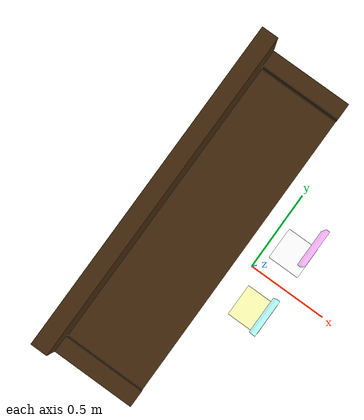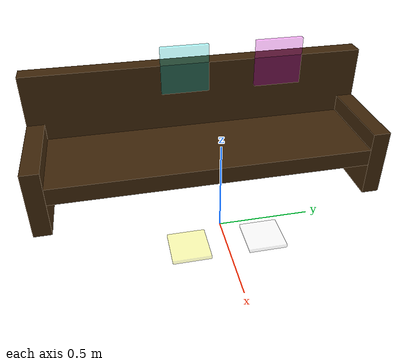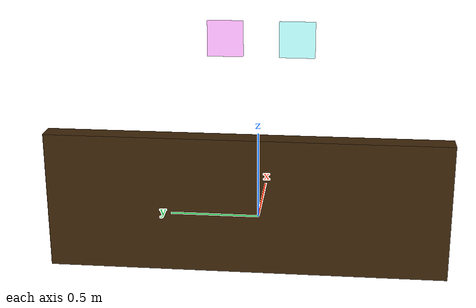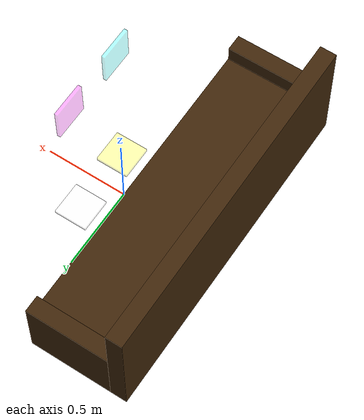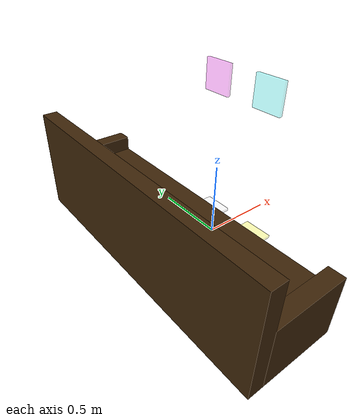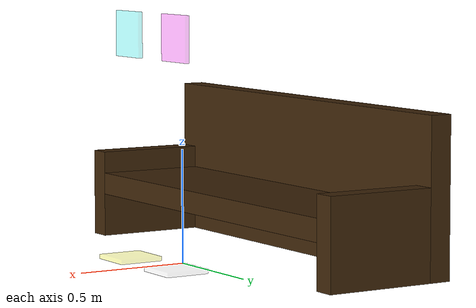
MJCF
<mujoco model="bench">
  <worldbody>
    <body name="bench" pos="-0.35 0 0" quat="1 0 0 0">
      <geom name="seat" type="box" pos="0 0 0.25" size=".25 .9 .05" mass="1." material="seat"/>
      <geom name="back" type="box" pos="-0.3 0 0.35" size=".05 1. .35" mass="1." quat="1 0 0 0" material="wood"/>
      <body name="left_arm" pos="0 0.95 0.2" quat="1 0 0 0">
        <geom name="left_arm" type="box" pos="0 0 0" size=".25 0.05 .2" mass="1." quat="1 0 0 0" material="wood"/>
      </body>
      <body name="right_arm" pos="0 -0.95 0.2" quat="1 0 0 0">
        <geom name="right_arm" type="box" pos="0 0 0" size=".25 0.05 .2" mass="1." quat="1 0 0 0" material="wood"/>
      </body>
    </body>
    <body name="right_hand_target" mocap="true" pos="0.15 -0.2 1" quat="1 0 0 0">
      <geom type="box" pos="0 0 0" size=".01 .1 .1" contype="0" conaffinity="0" rgba="0 1 1 .3"/>
    </body>
    <body name="left_hand_target" mocap="true" pos="0.15 0.2 1" quat="1 0 0 0">
      <geom type="box" pos="0 0 0" size=".01 .1 .1" contype="0" conaffinity="0" rgba="1 0 1 .3"/>
    </body>
    <body name="right_foot_target" mocap="true" pos="0.15 -0.2 0.011" quat="1 0 0 0">
      <geom type="box" pos="0 0 0" size=".1 .1 .01" contype="0" conaffinity="0" rgba="1 1 0 .3"/>
    </body>
    <body name="left_foot_target" mocap="true" pos="0.15 0.2 0.011" quat="1 0 0 0">
      <geom type="box" pos="0 0 0" size=".1 .1 .01" contype="0" conaffinity="0" rgba="1 1 1 .3"/>
    </body>
  </worldbody>

  <asset>
    <material name="seat" rgba="0.25 0.15 0.04 1"/>
    <material name="wood" rgba="0.25 0.15 0.04 1"/>
  </asset>

    <keyframe>
    <key name="home"
    qpos="
        -0.545841313124188
        0.047658159378007693
        0.7766175734591888
        0.97711053248215629
        -0.01247841069886769
        -0.13928735696814051
        -0.16030698290373033
        0.11790078727672677
        -0.36361370684902822
        0.017401928513080221
        0.098856590703772743
        0.22397053527348065
        -1.0849254336509295
        -1.8018701687565231
        -0.06668902547819372
        0.0794812262178124
        0.13066209175296004
        -0.46367106896320293
        -1.1275912567368289
        -1.7487797691937887
        -0.10836169397768537
        -0.64164389294200419
        0.49023408458900575
        -0.29192926712879019
        -1.7594980302991936
        0.60553562884796808
        -1.1676593169679554
        -0.82682315701648712"/>
  </keyframe>
</mujoco>
